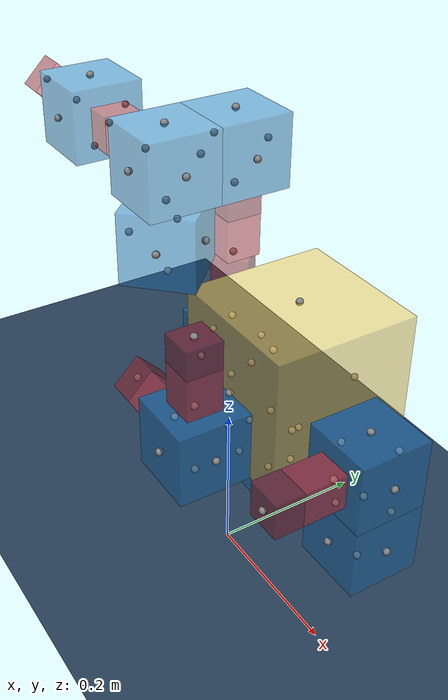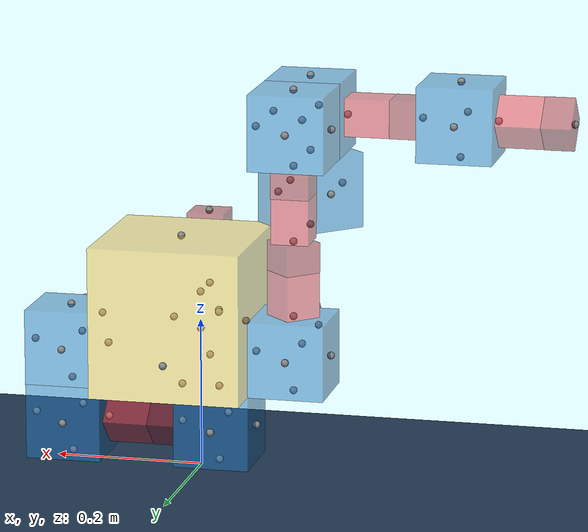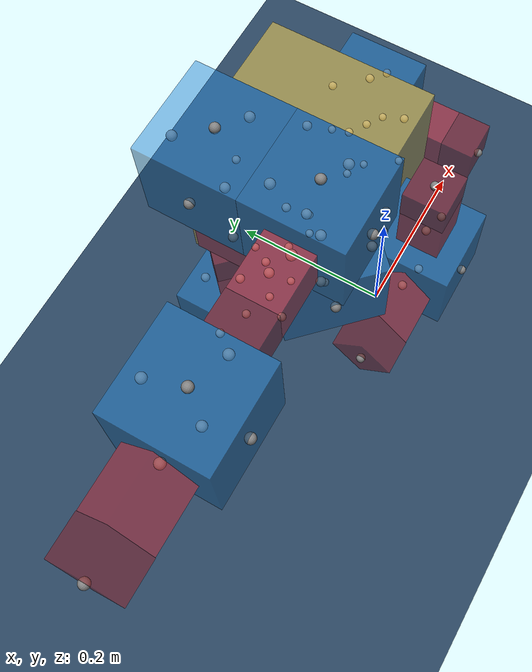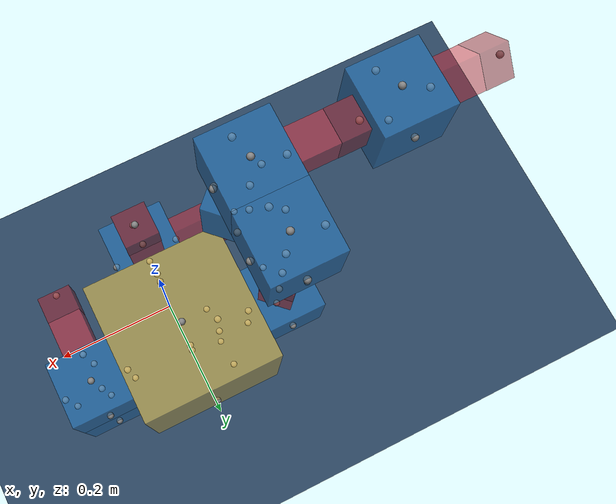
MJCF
<mujoco model="MuJoCo Model">
  <compiler angle="radian"/>

  <option integrator="implicitfast"/>

  <visual>
    <global offwidth="1280" offheight="960"/>
  </visual>

  <default>
    <default class="robot-main">
      <default class="robot-0-8-2-main"/>
      <default class="robot-0-12-3-main"/>
      <default class="robot-0-11-1-main"/>
      <default class="robot-8-22-2-main"/>
      <default class="robot-8-18-5-main"/>
      <default class="robot-12-15-5-main"/>
      <default class="robot-11-10-3-main"/>
      <default class="robot-11-5-4-main"/>
      <default class="robot-18-28-5-main"/>
      <default class="robot-15-24-0-main"/>
      <default class="robot-24-14-0-main"/>
      <default class="robot-28-27-0-main"/>
      <default class="robot-27-4-5-main"/>
      <default class="robot-14-19-3-main"/>
      <default class="robot-19-21-3-main"/>
      <default class="robot-19-3-4-main"/>
      <default class="robot-21-13-0-main"/>
      <default class="robot-13-17-0-main"/>
    </default>
  </default>

  <asset>
    <texture type="2d" colorspace="auto" name="grid" builtin="checker" rgb1="0.1 0.2 0.3" rgb2="0.2 0.3 0.4" width="600" height="600"/>
    <material name="grid" texture="grid" texuniform="true" texrepeat="3 3" reflectance="0.2"/>
  </asset>

  <worldbody>
    <geom name="floor" size="1 1 0.1" type="plane" material="grid"/>
    <site pos="0 0 0.238663"/>
    <light name="light" pos="0 0 1" dir="0 0 -1" castshadow="false"/>
    <body name="robot-world" pos="0 0 0.238663">
      <joint type="free"/>
      <body name="robot-core">
        <geom name="robot-core" size="0.1 0.1 0.1" pos="0 0.1 0" type="box" mass="1" rgba="0.992157 0.792157 0.25098 0.5"/>
        <site name="robot-core-front" pos="0 0.2 -0.05"/>
        <site name="robot-core-back" pos="0 0 -0.05" quat="0 0 0 1"/>
        <site name="robot-core-left" pos="-0.1 0.1 -0.05" quat="0.707107 0 0 0.707107"/>
        <site name="robot-core-right" pos="0.1 0.1 -0.05" quat="-0.707107 0 0 0.707107"/>
        <site name="robot-core-top" pos="0 0.1 0.1" quat="0.707107 0.707107 0 0"/>
        <site name="robot-core-bottom" pos="0 0.1 -0.1" quat="0 0 -0.707107 0.707107"/>
        <body name="robot-0-8-2-core" pos="0.1 0.1 -0.05" quat="-0.707107 0 0 0.707107">
          <geom name="robot-0-8-2-core" size="0.05 0.05 0.05" pos="0 0.05 0" type="box" mass="0.055" rgba="0.109804 0.466667 0.764706 0.5"/>
          <site name="robot-0-8-2-core-front" pos="0 0.1 0"/>
          <site name="robot-0-8-2-core-left" pos="-0.05 0.05 0" quat="0.707107 0 0 0.707107"/>
          <site name="robot-0-8-2-core-right" pos="0.05 0.05 0" quat="-0.707107 0 0 0.707107"/>
          <site name="robot-0-8-2-core-top" pos="0 0.05 0.05" quat="0.707107 0.707107 0 0"/>
          <site name="robot-0-8-2-core-bottom" pos="0 0.05 -0.05" quat="0 0 -0.707107 0.707107"/>
          <body name="robot-8-22-2-hinge" pos="0.05 0.05 0" quat="-0.5 -0.5 -0.5 0.5">
            <body name="robot-8-22-2-stator" pos="0 0.03 0">
              <geom name="robot-8-22-2-stator" size="0.02475 0.0297 0.02475" type="box" mass="0.02" rgba="0.87451 0.160784 0.207843 0.5"/>
            </body>
            <body name="robot-8-22-2-rotor" pos="0 0.08 0">
              <joint name="robot-8-22-2-servo" pos="0 -0.02 0" axis="0 0 1"/>
              <geom name="robot-8-22-2-rotor" size="0.025 0.02 0.025" type="box" mass="0.04" rgba="0.627451 0.0941176 0.129412 0.5"/>
              <site name="robot-8-22-2-hinge-front" pos="0 0.02 0"/>
            </body>
          </body>
          <body name="robot-8-18-5-core" pos="0 0.05 -0.05" quat="0.707107 -0.707107 0 0">
            <geom name="robot-8-18-5-core" size="0.05 0.05 0.05" pos="0 0.05 0" type="box" mass="0.055" rgba="0.109804 0.466667 0.764706 0.5"/>
            <site name="robot-8-18-5-core-front" pos="0 0.1 0"/>
            <site name="robot-8-18-5-core-left" pos="-0.05 0.05 0" quat="0.707107 0 0 0.707107"/>
            <site name="robot-8-18-5-core-right" pos="0.05 0.05 0" quat="-0.707107 0 0 0.707107"/>
            <site name="robot-8-18-5-core-top" pos="0 0.05 0.05" quat="0.707107 0.707107 0 0"/>
            <site name="robot-8-18-5-core-bottom" pos="0 0.05 -0.05" quat="0 0 -0.707107 0.707107"/>
            <body name="robot-18-28-5-hinge" pos="0 0.05 -0.05" quat="0.653215 -0.653215 0.270759 -0.270759">
              <body name="robot-18-28-5-stator" pos="0 0.03 0">
                <geom name="robot-18-28-5-stator" size="0.02475 0.0297 0.02475" type="box" mass="0.02" rgba="0.87451 0.160784 0.207843 0.5"/>
              </body>
              <body name="robot-18-28-5-rotor" pos="0 0.08 0">
                <joint name="robot-18-28-5-servo" pos="0 -0.02 0" axis="0 0 1"/>
                <geom name="robot-18-28-5-rotor" size="0.025 0.02 0.025" type="box" mass="0.04" rgba="0.627451 0.0941176 0.129412 0.5"/>
                <site name="robot-18-28-5-hinge-front" pos="0 0.02 0"/>
                <body name="robot-28-27-0-core" pos="0 0.02 0" quat="-0.923785 0 0.382911 0">
                  <geom name="robot-28-27-0-core" size="0.05 0.05 0.05" pos="0 0.05 0" type="box" mass="0.055" rgba="0.109804 0.466667 0.764706 0.5"/>
                  <site name="robot-28-27-0-core-front" pos="0 0.1 0"/>
                  <site name="robot-28-27-0-core-left" pos="-0.05 0.05 0" quat="0.707107 0 0 0.707107"/>
                  <site name="robot-28-27-0-core-right" pos="0.05 0.05 0" quat="-0.707107 0 0 0.707107"/>
                  <site name="robot-28-27-0-core-top" pos="0 0.05 0.05" quat="0.707107 0.707107 0 0"/>
                  <site name="robot-28-27-0-core-bottom" pos="0 0.05 -0.05" quat="0 0 -0.707107 0.707107"/>
                  <body name="robot-27-4-5-hinge" pos="0 0.05 -0.05" quat="0.270759 -0.270759 0.653215 -0.653215">
                    <body name="robot-27-4-5-stator" pos="0 0.03 0">
                      <geom name="robot-27-4-5-stator" size="0.02475 0.0297 0.02475" type="box" mass="0.02" rgba="0.87451 0.160784 0.207843 0.5"/>
                    </body>
                    <body name="robot-27-4-5-rotor" pos="0 0.08 0">
                      <joint name="robot-27-4-5-servo" pos="0 -0.02 0" axis="0 0 1"/>
                      <geom name="robot-27-4-5-rotor" size="0.025 0.02 0.025" type="box" mass="0.04" rgba="0.627451 0.0941176 0.129412 0.5"/>
                      <site name="robot-27-4-5-hinge-front" pos="0 0.02 0"/>
                    </body>
                  </body>
                </body>
              </body>
            </body>
          </body>
        </body>
        <body name="robot-0-12-3-core" pos="-0.1 0.1 -0.05" quat="0 -0.707107 0.707107 0">
          <geom name="robot-0-12-3-core" size="0.05 0.05 0.05" pos="0 0.05 0" type="box" mass="0.055" rgba="0.109804 0.466667 0.764706 0.5"/>
          <site name="robot-0-12-3-core-front" pos="0 0.1 0"/>
          <site name="robot-0-12-3-core-left" pos="-0.05 0.05 0" quat="0.707107 0 0 0.707107"/>
          <site name="robot-0-12-3-core-right" pos="0.05 0.05 0" quat="-0.707107 0 0 0.707107"/>
          <site name="robot-0-12-3-core-top" pos="0 0.05 0.05" quat="0.707107 0.707107 0 0"/>
          <site name="robot-0-12-3-core-bottom" pos="0 0.05 -0.05" quat="0 0 -0.707107 0.707107"/>
          <body name="robot-12-15-5-hinge" pos="0 0.05 -0.05" quat="0.270759 -0.270759 0.653215 -0.653215">
            <body name="robot-12-15-5-stator" pos="0 0.03 0">
              <geom name="robot-12-15-5-stator" size="0.02475 0.0297 0.02475" type="box" mass="0.02" rgba="0.87451 0.160784 0.207843 0.5"/>
            </body>
            <body name="robot-12-15-5-rotor" pos="0 0.08 0">
              <joint name="robot-12-15-5-servo" pos="0 -0.02 0" axis="0 0 1"/>
              <geom name="robot-12-15-5-rotor" size="0.025 0.02 0.025" type="box" mass="0.04" rgba="0.627451 0.0941176 0.129412 0.5"/>
              <site name="robot-12-15-5-hinge-front" pos="0 0.02 0"/>
              <body name="robot-15-24-0-hinge" pos="0 0.02 0" quat="0.923785 0 0.382911 0">
                <body name="robot-15-24-0-stator" pos="0 0.03 0">
                  <geom name="robot-15-24-0-stator" size="0.02475 0.0297 0.02475" type="box" mass="0.02" rgba="0.87451 0.160784 0.207843 0.5"/>
                </body>
                <body name="robot-15-24-0-rotor" pos="0 0.08 0">
                  <joint name="robot-15-24-0-servo" pos="0 -0.02 0" axis="0 0 1"/>
                  <geom name="robot-15-24-0-rotor" size="0.025 0.02 0.025" type="box" mass="0.04" rgba="0.627451 0.0941176 0.129412 0.5"/>
                  <site name="robot-15-24-0-hinge-front" pos="0 0.02 0"/>
                  <body name="robot-24-14-0-core" pos="0 0.02 0">
                    <geom name="robot-24-14-0-core" size="0.05 0.05 0.05" pos="0 0.05 0" type="box" mass="0.055" rgba="0.109804 0.466667 0.764706 0.5"/>
                    <site name="robot-24-14-0-core-front" pos="0 0.1 0"/>
                    <site name="robot-24-14-0-core-left" pos="-0.05 0.05 0" quat="0.707107 0 0 0.707107"/>
                    <site name="robot-24-14-0-core-right" pos="0.05 0.05 0" quat="-0.707107 0 0 0.707107"/>
                    <site name="robot-24-14-0-core-top" pos="0 0.05 0.05" quat="0.707107 0.707107 0 0"/>
                    <site name="robot-24-14-0-core-bottom" pos="0 0.05 -0.05" quat="0 0 -0.707107 0.707107"/>
                    <body name="robot-14-19-3-core" pos="-0.05 0.05 0" quat="-0.5 -0.5 0.5 -0.5">
                      <geom name="robot-14-19-3-core" size="0.05 0.05 0.05" pos="0 0.05 0" type="box" mass="0.055" rgba="0.109804 0.466667 0.764706 0.5"/>
                      <site name="robot-14-19-3-core-front" pos="0 0.1 0"/>
                      <site name="robot-14-19-3-core-left" pos="-0.05 0.05 0" quat="0.707107 0 0 0.707107"/>
                      <site name="robot-14-19-3-core-right" pos="0.05 0.05 0" quat="-0.707107 0 0 0.707107"/>
                      <site name="robot-14-19-3-core-top" pos="0 0.05 0.05" quat="0.707107 0.707107 0 0"/>
                      <site name="robot-14-19-3-core-bottom" pos="0 0.05 -0.05" quat="0 0 -0.707107 0.707107"/>
                      <body name="robot-19-21-3-hinge" pos="-0.05 0.05 0" quat="0.5 -0.5 0.5 0.5">
                        <body name="robot-19-21-3-stator" pos="0 0.03 0">
                          <geom name="robot-19-21-3-stator" size="0.02475 0.0297 0.02475" type="box" mass="0.02" rgba="0.87451 0.160784 0.207843 0.5"/>
                        </body>
                        <body name="robot-19-21-3-rotor" pos="0 0.08 0">
                          <joint name="robot-19-21-3-servo" pos="0 -0.02 0" axis="0 0 1"/>
                          <geom name="robot-19-21-3-rotor" size="0.025 0.02 0.025" type="box" mass="0.04" rgba="0.627451 0.0941176 0.129412 0.5"/>
                          <site name="robot-19-21-3-hinge-front" pos="0 0.02 0"/>
                          <body name="robot-21-13-0-core" pos="0 0.02 0" quat="0 0 1 0">
                            <geom name="robot-21-13-0-core" size="0.05 0.05 0.05" pos="0 0.05 0" type="box" mass="0.055" rgba="0.109804 0.466667 0.764706 0.5"/>
                            <site name="robot-21-13-0-core-front" pos="0 0.1 0"/>
                            <site name="robot-21-13-0-core-left" pos="-0.05 0.05 0" quat="0.707107 0 0 0.707107"/>
                            <site name="robot-21-13-0-core-right" pos="0.05 0.05 0" quat="-0.707107 0 0 0.707107"/>
                            <site name="robot-21-13-0-core-top" pos="0 0.05 0.05" quat="0.707107 0.707107 0 0"/>
                            <site name="robot-21-13-0-core-bottom" pos="0 0.05 -0.05" quat="0 0 -0.707107 0.707107"/>
                            <body name="robot-13-17-0-hinge" pos="0 0.1 0" quat="-0.923785 0 0.382911 0">
                              <body name="robot-13-17-0-stator" pos="0 0.03 0">
                                <geom name="robot-13-17-0-stator" size="0.02475 0.0297 0.02475" type="box" mass="0.02" rgba="0.87451 0.160784 0.207843 0.5"/>
                              </body>
                              <body name="robot-13-17-0-rotor" pos="0 0.08 0">
                                <joint name="robot-13-17-0-servo" pos="0 -0.02 0" axis="0 0 1"/>
                                <geom name="robot-13-17-0-rotor" size="0.025 0.02 0.025" type="box" mass="0.04" rgba="0.627451 0.0941176 0.129412 0.5"/>
                                <site name="robot-13-17-0-hinge-front" pos="0 0.02 0"/>
                              </body>
                            </body>
                          </body>
                        </body>
                      </body>
                      <body name="robot-19-3-4-core" pos="0 0.05 0.05" quat="-0.270759 -0.270759 0.653215 0.653215">
                        <geom name="robot-19-3-4-core" size="0.05 0.05 0.05" pos="0 0.05 0" type="box" mass="0.055" rgba="0.109804 0.466667 0.764706 0.5"/>
                        <site name="robot-19-3-4-core-front" pos="0 0.1 0"/>
                        <site name="robot-19-3-4-core-left" pos="-0.05 0.05 0" quat="0.707107 0 0 0.707107"/>
                        <site name="robot-19-3-4-core-right" pos="0.05 0.05 0" quat="-0.707107 0 0 0.707107"/>
                        <site name="robot-19-3-4-core-top" pos="0 0.05 0.05" quat="0.707107 0.707107 0 0"/>
                        <site name="robot-19-3-4-core-bottom" pos="0 0.05 -0.05" quat="0 0 -0.707107 0.707107"/>
                      </body>
                    </body>
                  </body>
                </body>
              </body>
            </body>
          </body>
        </body>
        <body name="robot-0-11-1-core" pos="0 0 -0.05" quat="0 -0.707107 0 0.707107">
          <geom name="robot-0-11-1-core" size="0.05 0.05 0.05" pos="0 0.05 0" type="box" mass="0.055" rgba="0.109804 0.466667 0.764706 0.5"/>
          <site name="robot-0-11-1-core-front" pos="0 0.1 0"/>
          <site name="robot-0-11-1-core-left" pos="-0.05 0.05 0" quat="0.707107 0 0 0.707107"/>
          <site name="robot-0-11-1-core-right" pos="0.05 0.05 0" quat="-0.707107 0 0 0.707107"/>
          <site name="robot-0-11-1-core-top" pos="0 0.05 0.05" quat="0.707107 0.707107 0 0"/>
          <site name="robot-0-11-1-core-bottom" pos="0 0.05 -0.05" quat="0 0 -0.707107 0.707107"/>
          <body name="robot-11-10-3-hinge" pos="-0.05 0.05 0" quat="0 -0.707107 0.707107 0">
            <body name="robot-11-10-3-stator" pos="0 0.03 0">
              <geom name="robot-11-10-3-stator" size="0.02475 0.0297 0.02475" type="box" mass="0.02" rgba="0.87451 0.160784 0.207843 0.5"/>
            </body>
            <body name="robot-11-10-3-rotor" pos="0 0.08 0">
              <joint name="robot-11-10-3-servo" pos="0 -0.02 0" axis="0 0 1"/>
              <geom name="robot-11-10-3-rotor" size="0.025 0.02 0.025" type="box" mass="0.04" rgba="0.627451 0.0941176 0.129412 0.5"/>
              <site name="robot-11-10-3-hinge-front" pos="0 0.02 0"/>
            </body>
          </body>
          <body name="robot-11-5-4-hinge" pos="0 0.05 0.05" quat="-0.653215 -0.653215 0.270759 0.270759">
            <body name="robot-11-5-4-stator" pos="0 0.03 0">
              <geom name="robot-11-5-4-stator" size="0.02475 0.0297 0.02475" type="box" mass="0.02" rgba="0.87451 0.160784 0.207843 0.5"/>
            </body>
            <body name="robot-11-5-4-rotor" pos="0 0.08 0">
              <joint name="robot-11-5-4-servo" pos="0 -0.02 0" axis="0 0 1"/>
              <geom name="robot-11-5-4-rotor" size="0.025 0.02 0.025" type="box" mass="0.04" rgba="0.627451 0.0941176 0.129412 0.5"/>
              <site name="robot-11-5-4-hinge-front" pos="0 0.02 0"/>
            </body>
          </body>
        </body>
      </body>
    </body>
  </worldbody>

  <contact>
    <exclude body1="robot-8-22-2-stator" body2="robot-8-22-2-rotor"/>
    <exclude body1="robot-18-28-5-stator" body2="robot-18-28-5-rotor"/>
    <exclude body1="robot-27-4-5-stator" body2="robot-27-4-5-rotor"/>
    <exclude body1="robot-12-15-5-stator" body2="robot-12-15-5-rotor"/>
    <exclude body1="robot-15-24-0-stator" body2="robot-15-24-0-rotor"/>
    <exclude body1="robot-19-21-3-stator" body2="robot-19-21-3-rotor"/>
    <exclude body1="robot-13-17-0-stator" body2="robot-13-17-0-rotor"/>
    <exclude body1="robot-11-10-3-stator" body2="robot-11-10-3-rotor"/>
    <exclude body1="robot-11-5-4-stator" body2="robot-11-5-4-rotor"/>
  </contact>

  <actuator>
    <general name="robot-8-22-2-servo" joint="robot-8-22-2-servo" ctrlrange="-1.5708 1.5708" dynprm="0 0 0 0 0 0 0 0 0 0" biastype="affine" biasprm="0 -1 -1"/>
    <general name="robot-12-15-5-servo" joint="robot-12-15-5-servo" ctrlrange="-1.5708 1.5708" dynprm="0 0 0 0 0 0 0 0 0 0" biastype="affine" biasprm="0 -1 -1"/>
    <general name="robot-11-10-3-servo" joint="robot-11-10-3-servo" ctrlrange="-1.5708 1.5708" dynprm="0 0 0 0 0 0 0 0 0 0" biastype="affine" biasprm="0 -1 -1"/>
    <general name="robot-11-5-4-servo" joint="robot-11-5-4-servo" ctrlrange="-1.5708 1.5708" dynprm="0 0 0 0 0 0 0 0 0 0" biastype="affine" biasprm="0 -1 -1"/>
    <general name="robot-18-28-5-servo" joint="robot-18-28-5-servo" ctrlrange="-1.5708 1.5708" dynprm="0 0 0 0 0 0 0 0 0 0" biastype="affine" biasprm="0 -1 -1"/>
    <general name="robot-15-24-0-servo" joint="robot-15-24-0-servo" ctrlrange="-1.5708 1.5708" dynprm="0 0 0 0 0 0 0 0 0 0" biastype="affine" biasprm="0 -1 -1"/>
    <general name="robot-27-4-5-servo" joint="robot-27-4-5-servo" ctrlrange="-1.5708 1.5708" dynprm="0 0 0 0 0 0 0 0 0 0" biastype="affine" biasprm="0 -1 -1"/>
    <general name="robot-19-21-3-servo" joint="robot-19-21-3-servo" ctrlrange="-1.5708 1.5708" dynprm="0 0 0 0 0 0 0 0 0 0" biastype="affine" biasprm="0 -1 -1"/>
    <general name="robot-13-17-0-servo" joint="robot-13-17-0-servo" ctrlrange="-1.5708 1.5708" dynprm="0 0 0 0 0 0 0 0 0 0" biastype="affine" biasprm="0 -1 -1"/>
  </actuator>
</mujoco>
